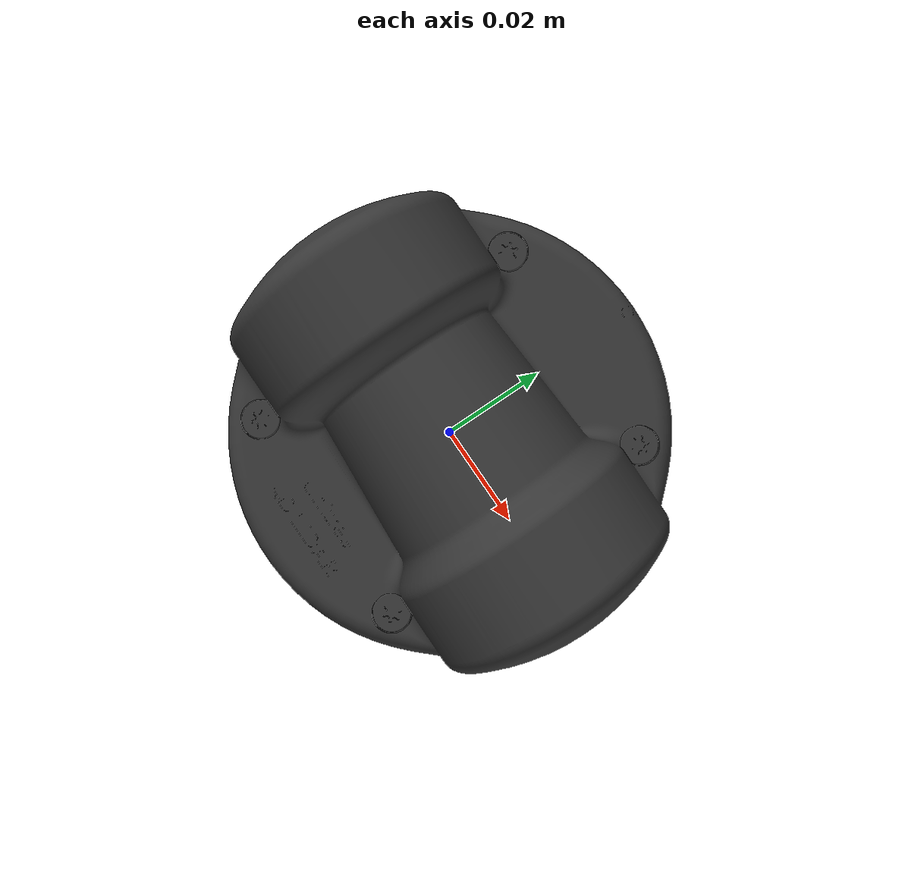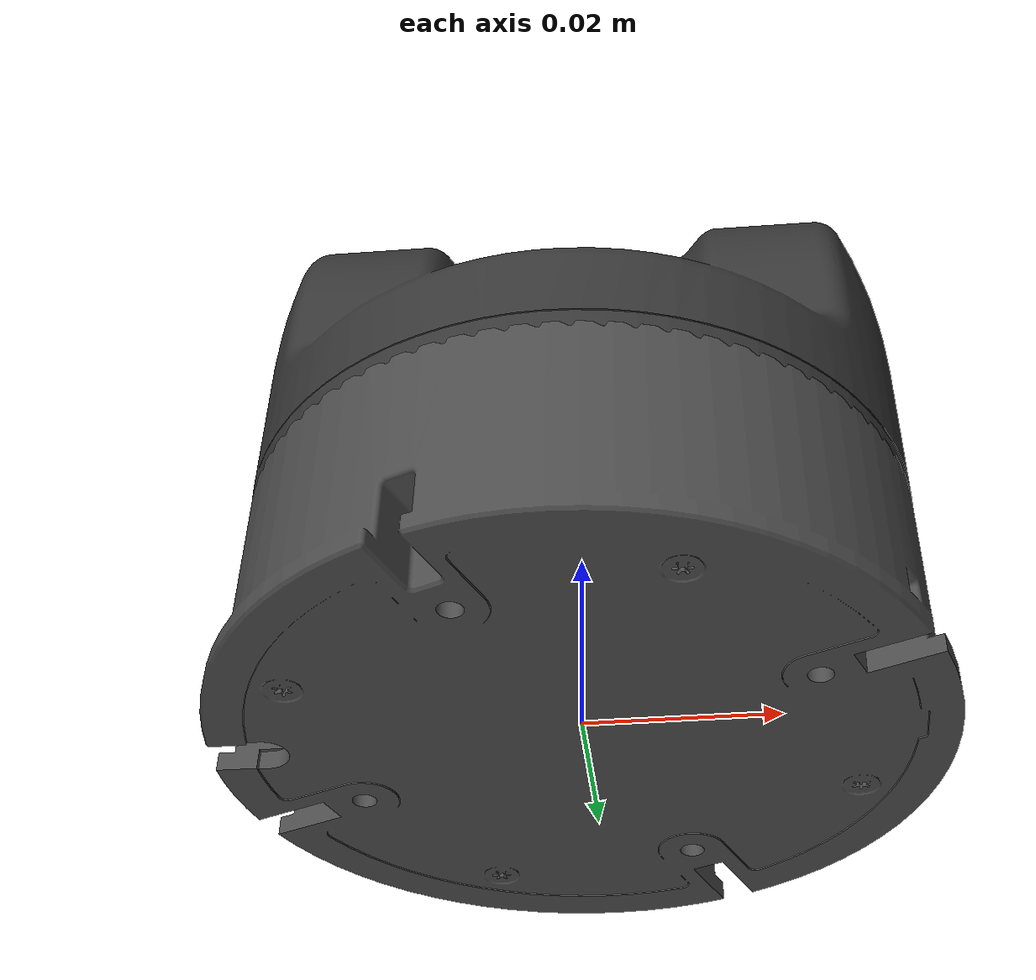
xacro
<?xml version="1.0" ?>
<robot name="unilidarl2" xmlns:xacro="http://www.ros.org/wiki/xacro">
  <!-- Wrapper file:
       Include the reusable lidar macro and instantiate it as a standalone model. -->
  <xacro:include filename="$(find kanga_description)/urdf/sensors/UniLidarL2/UniLidarL2_macro.urdf.xacro"/>

  <!-- Local root used only when visualizing the lidar by itself. -->
  <link name="base_link"/>
  <!-- Instantiate the reusable macro and attach it to this root. -->
  <xacro:unilidarl2 parent="base_link"/>
</robot>

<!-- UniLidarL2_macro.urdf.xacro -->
<robot name="unilidarl2_macro" xmlns:xacro="http://www.ros.org/wiki/xacro">
  <xacro:macro name="unilidarl2" params="parent xyz:='0 0 0' rpy:='0 0 0' prefix:=''">
    <!-- Mount joint from caller-provided parent to lidar base. -->
    <joint name="${prefix}unilidarl2_mount_joint" type="fixed">
      <origin xyz="${xyz}" rpy="${rpy}"/>
      <parent link="${parent}"/>
      <child link="${prefix}unilidarl2_base"/>
      <axis xyz="0 0 0"/>
    </joint>

    <!-- Main lidar body. -->
    <link name="${prefix}unilidarl2_base">
      <inertial>
        <origin xyz="6.88756e-05 4.86924e-06 0.00436145" rpy="0 0 0"/>
        <mass value="0.1"/>
        <inertia ixx="4.63963e-05" ixy="1.473e-09" ixz="9.141e-08" iyy="4.60192e-05" iyz="3.537e-09" izz="8.42575e-05"/>
      </inertial>
      <visual>
        <origin xyz="-1.94934e-06 -0.53025 0.313234" rpy="3.14159 -0.349066 1.5708"/>
        <geometry>
          <mesh filename="package://kanga_description/urdf/sensors/UniLidarL2/meshes/unilidarl2_base.stl"/>
        </geometry>
        <material name="unilidarl2_base_material">
          <color rgba="0.301961 0.301961 0.301961 1"/>
        </material>
      </visual>
      <collision>
        <origin xyz="-1.94934e-06 -0.53025 0.313234" rpy="3.14159 -0.349066 1.5708"/>
        <geometry>
          <mesh filename="package://kanga_description/urdf/sensors/UniLidarL2/meshes/unilidarl2_base.stl"/>
        </geometry>
      </collision>
    </link>

    <!-- Rotating top cap of the lidar. -->
    <link name="${prefix}unilidarl2_top">
      <inertial>
        <origin xyz="6.66489e-05 -2.74177e-06 0.0157604" rpy="0 0 0"/>
        <mass value="0.13"/>
        <inertia ixx="3.66094e-05" ixy="-1.075e-09" ixz="-9.3857e-08" iyy="5.78833e-05" iyz="-2.975e-09" izz="7.00661e-05"/>
      </inertial>
      <visual>
        <origin xyz="-1.94934e-06 -0.53025 0.290634" rpy="3.14159 -0.349066 1.5708"/>
        <geometry>
          <mesh filename="package://kanga_description/urdf/sensors/UniLidarL2/meshes/unilidarl2_top.stl"/>
        </geometry>
        <material name="unilidarl2_top_material">
          <color rgba="0.215686 0.215686 0.215686 1"/>
        </material>
      </visual>
      <collision>
        <origin xyz="-1.94934e-06 -0.53025 0.290634" rpy="3.14159 -0.349066 1.5708"/>
        <geometry>
          <mesh filename="package://kanga_description/urdf/sensors/UniLidarL2/meshes/unilidarl2_top.stl"/>
        </geometry>
      </collision>
    </link>

    <!-- Spin joint from base to top cap (currently constrained by limits). -->
    <joint name="${prefix}unilidarl2_top_joint" type="revolute">
      <origin xyz="-0 0 0.0214" rpy="0 -0 0"/>
      <parent link="${prefix}unilidarl2_base"/>
      <child link="${prefix}unilidarl2_top"/>
      <axis xyz="0 0 1"/>
      <limit effort="10" velocity="10" lower="0" upper="0"/>
    </joint>
  </xacro:macro>
</robot>
